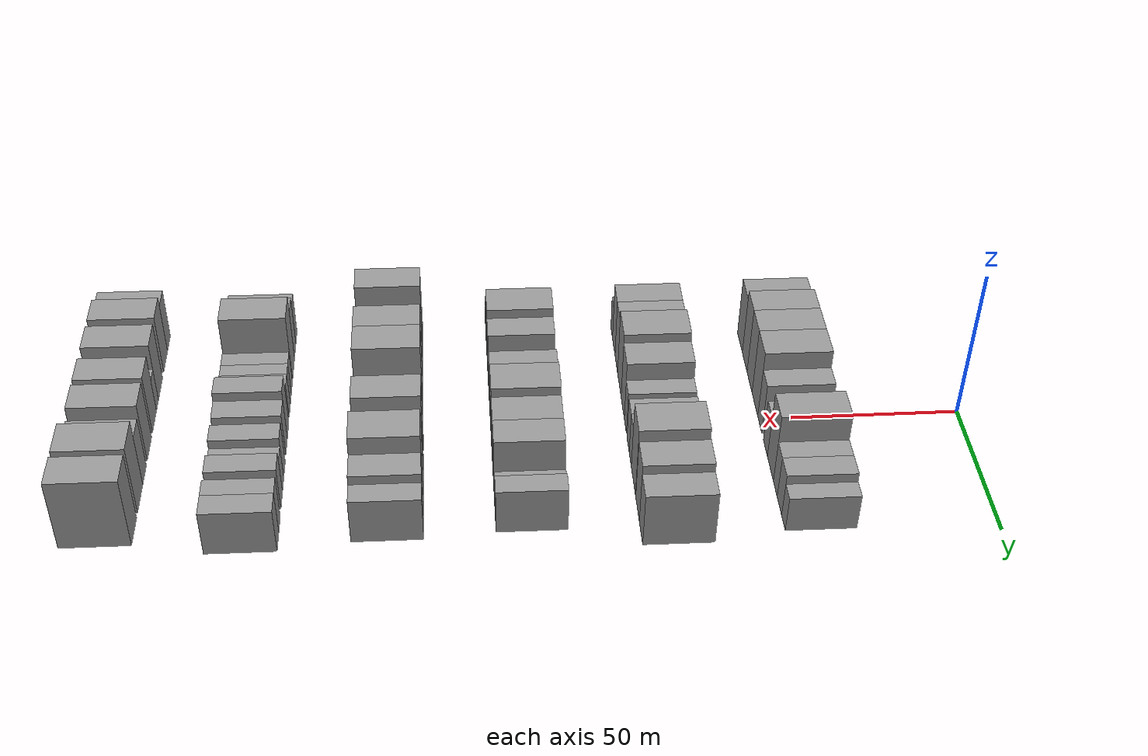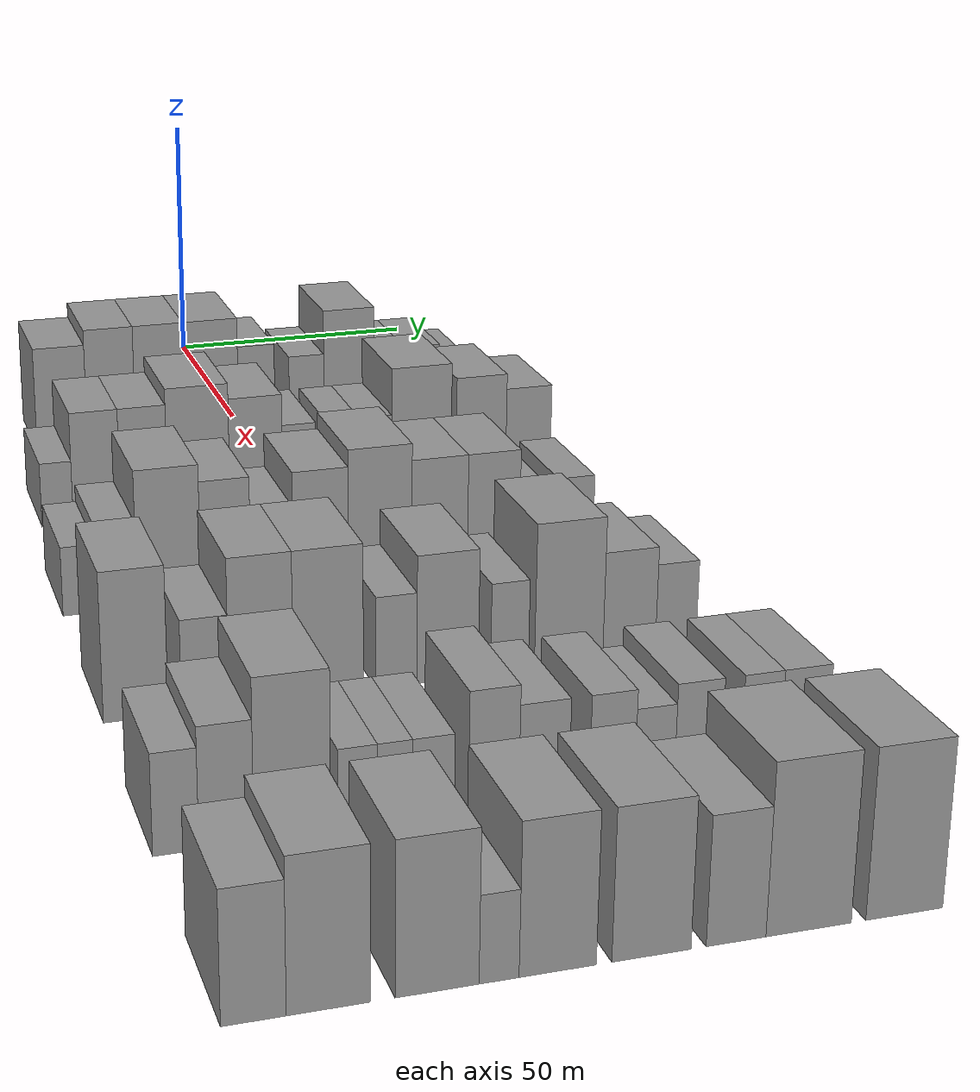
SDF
<sdf version="1.6">
 <world name="default">
  <model name="building_64">
   <static>1</static>
   <pose>50.0000 -36.5707 0 0.000000 0.000000 0.000000</pose>
   <link name="link">
    <pose>0 0 10.50 0 0 0</pose>
    <collision name="collision"><geometry><box><size>20.0000 9.9831 21.0000</size></box></geometry></collision>
    <visual name="visual">
     <cast_shadows>0</cast_shadows>
     <geometry><box><size>20.0000 9.9831 21.0000</size></box></geometry>
     <material>
      <script>
       <uri>model://grey_wall/materials/scripts</uri>
       <uri>model://grey_wall/materials/textures</uri>
       <name>vrc/grey_wall</name>
      </script>
     </material>
    </visual>
   </link>
  </model>
  <model name="building_65">
   <static>1</static>
   <pose>50.0000 -26.7552 0 0.000000 0.000000 0.000000</pose>
   <link name="link">
    <pose>0 0 12.00 0 0 0</pose>
    <collision name="collision"><geometry><box><size>20.0000 9.6478 24.0000</size></box></geometry></collision>
    <visual name="visual">
     <cast_shadows>0</cast_shadows>
     <geometry><box><size>20.0000 9.6478 24.0000</size></box></geometry>
     <material>
      <script>
       <uri>model://grey_wall/materials/scripts</uri>
       <uri>model://grey_wall/materials/textures</uri>
       <name>vrc/grey_wall</name>
      </script>
     </material>
    </visual>
   </link>
  </model>
  <model name="building_66">
   <static>1</static>
   <pose>50.0000 -16.9286 0 0.000000 0.000000 0.000000</pose>
   <link name="link">
    <pose>0 0 12.00 0 0 0</pose>
    <collision name="collision"><geometry><box><size>20.0000 10.0054 24.0000</size></box></geometry></collision>
    <visual name="visual">
     <cast_shadows>0</cast_shadows>
     <geometry><box><size>20.0000 10.0054 24.0000</size></box></geometry>
     <material>
      <script>
       <uri>model://grey_wall/materials/scripts</uri>
       <uri>model://grey_wall/materials/textures</uri>
       <name>vrc/grey_wall</name>
      </script>
     </material>
    </visual>
   </link>
  </model>
  <model name="building_67">
   <static>1</static>
   <pose>50.0000 -6.4677 0 0.000000 0.000000 0.000000</pose>
   <link name="link">
    <pose>0 0 12.00 0 0 0</pose>
    <collision name="collision"><geometry><box><size>20.0000 10.9163 24.0000</size></box></geometry></collision>
    <visual name="visual">
     <cast_shadows>0</cast_shadows>
     <geometry><box><size>20.0000 10.9163 24.0000</size></box></geometry>
     <material>
      <script>
       <uri>model://grey_wall/materials/scripts</uri>
       <uri>model://grey_wall/materials/textures</uri>
       <name>vrc/grey_wall</name>
      </script>
     </material>
    </visual>
   </link>
  </model>
  <model name="building_68">
   <static>1</static>
   <pose>50.0000 2.7453 0 0.000000 0.000000 0.000000</pose>
   <link name="link">
    <pose>0 0 9.00 0 0 0</pose>
    <collision name="collision"><geometry><box><size>20.0000 7.5098 18.0000</size></box></geometry></collision>
    <visual name="visual">
     <cast_shadows>0</cast_shadows>
     <geometry><box><size>20.0000 7.5098 18.0000</size></box></geometry>
     <material>
      <script>
       <uri>model://grey_wall/materials/scripts</uri>
       <uri>model://grey_wall/materials/textures</uri>
       <name>vrc/grey_wall</name>
      </script>
     </material>
    </visual>
   </link>
  </model>
  <model name="building_69">
   <static>1</static>
   <pose>50.0000 13.1117 0 0.000000 0.000000 0.000000</pose>
   <link name="link">
    <pose>0 0 7.50 0 0 0</pose>
    <collision name="collision"><geometry><box><size>20.0000 7.2229 15.0000</size></box></geometry></collision>
    <visual name="visual">
     <cast_shadows>0</cast_shadows>
     <geometry><box><size>20.0000 7.2229 15.0000</size></box></geometry>
     <material>
      <script>
       <uri>model://grey_wall/materials/scripts</uri>
       <uri>model://grey_wall/materials/textures</uri>
       <name>vrc/grey_wall</name>
      </script>
     </material>
    </visual>
   </link>
  </model>
  <model name="building_70">
   <static>1</static>
   <pose>50.0000 21.9807 0 0.000000 0.000000 0.000000</pose>
   <link name="link">
    <pose>0 0 12.00 0 0 0</pose>
    <collision name="collision"><geometry><box><size>20.0000 10.5153 24.0000</size></box></geometry></collision>
    <visual name="visual">
     <cast_shadows>0</cast_shadows>
     <geometry><box><size>20.0000 10.5153 24.0000</size></box></geometry>
     <material>
      <script>
       <uri>model://grey_wall/materials/scripts</uri>
       <uri>model://grey_wall/materials/textures</uri>
       <name>vrc/grey_wall</name>
      </script>
     </material>
    </visual>
   </link>
  </model>
  <model name="building_71">
   <static>1</static>
   <pose>50.0000 30.4927 0 0.000000 0.000000 0.000000</pose>
   <link name="link">
    <pose>0 0 7.50 0 0 0</pose>
    <collision name="collision"><geometry><box><size>20.0000 6.5086 15.0000</size></box></geometry></collision>
    <visual name="visual">
     <cast_shadows>0</cast_shadows>
     <geometry><box><size>20.0000 6.5086 15.0000</size></box></geometry>
     <material>
      <script>
       <uri>model://grey_wall/materials/scripts</uri>
       <uri>model://grey_wall/materials/textures</uri>
       <name>vrc/grey_wall</name>
      </script>
     </material>
    </visual>
   </link>
  </model>
  <model name="building_72">
   <static>1</static>
   <pose>50.0000 37.4899 0 0.000000 0.000000 0.000000</pose>
   <link name="link">
    <pose>0 0 7.50 0 0 0</pose>
    <collision name="collision"><geometry><box><size>20.0000 7.4859 15.0000</size></box></geometry></collision>
    <visual name="visual">
     <cast_shadows>0</cast_shadows>
     <geometry><box><size>20.0000 7.4859 15.0000</size></box></geometry>
     <material>
      <script>
       <uri>model://grey_wall/materials/scripts</uri>
       <uri>model://grey_wall/materials/textures</uri>
       <name>vrc/grey_wall</name>
      </script>
     </material>
    </visual>
   </link>
  </model>
  <model name="building_73">
   <static>1</static>
   <pose>50.0000 44.1917 0 0.000000 0.000000 0.000000</pose>
   <link name="link">
    <pose>0 0 6.00 0 0 0</pose>
    <collision name="collision"><geometry><box><size>20.0000 5.9176 12.0000</size></box></geometry></collision>
    <visual name="visual">
     <cast_shadows>0</cast_shadows>
     <geometry><box><size>20.0000 5.9176 12.0000</size></box></geometry>
     <material>
      <script>
       <uri>model://grey_wall/materials/scripts</uri>
       <uri>model://grey_wall/materials/textures</uri>
       <name>vrc/grey_wall</name>
      </script>
     </material>
    </visual>
   </link>
  </model>
  <model name="building_193">
   <static>1</static>
   <pose>90.0000 -43.5372 0 0.000000 0.000000 0.000000</pose>
   <link name="link">
    <pose>0 0 6.00 0 0 0</pose>
    <collision name="collision"><geometry><box><size>20.0000 5.6573 12.0000</size></box></geometry></collision>
    <visual name="visual">
     <cast_shadows>0</cast_shadows>
     <geometry><box><size>20.0000 5.6573 12.0000</size></box></geometry>
     <material>
      <script>
       <uri>model://grey_wall/materials/scripts</uri>
       <uri>model://grey_wall/materials/textures</uri>
       <name>vrc/grey_wall</name>
      </script>
     </material>
    </visual>
   </link>
  </model>
  <model name="building_194">
   <static>1</static>
   <pose>90.0000 -36.3750 0 0.000000 0.000000 0.000000</pose>
   <link name="link">
    <pose>0 0 10.50 0 0 0</pose>
    <collision name="collision"><geometry><box><size>20.0000 8.6672 21.0000</size></box></geometry></collision>
    <visual name="visual">
     <cast_shadows>0</cast_shadows>
     <geometry><box><size>20.0000 8.6672 21.0000</size></box></geometry>
     <material>
      <script>
       <uri>model://grey_wall/materials/scripts</uri>
       <uri>model://grey_wall/materials/textures</uri>
       <name>vrc/grey_wall</name>
      </script>
     </material>
    </visual>
   </link>
  </model>
  <model name="building_195">
   <static>1</static>
   <pose>90.0000 -27.6956 0 0.000000 0.000000 0.000000</pose>
   <link name="link">
    <pose>0 0 10.50 0 0 0</pose>
    <collision name="collision"><geometry><box><size>20.0000 8.6914 21.0000</size></box></geometry></collision>
    <visual name="visual">
     <cast_shadows>0</cast_shadows>
     <geometry><box><size>20.0000 8.6914 21.0000</size></box></geometry>
     <material>
      <script>
       <uri>model://grey_wall/materials/scripts</uri>
       <uri>model://grey_wall/materials/textures</uri>
       <name>vrc/grey_wall</name>
      </script>
     </material>
    </visual>
   </link>
  </model>
  <model name="building_196">
   <static>1</static>
   <pose>90.0000 -17.5672 0 0.000000 0.000000 0.000000</pose>
   <link name="link">
    <pose>0 0 12.00 0 0 0</pose>
    <collision name="collision"><geometry><box><size>20.0000 11.5655 24.0000</size></box></geometry></collision>
    <visual name="visual">
     <cast_shadows>0</cast_shadows>
     <geometry><box><size>20.0000 11.5655 24.0000</size></box></geometry>
     <material>
      <script>
       <uri>model://grey_wall/materials/scripts</uri>
       <uri>model://grey_wall/materials/textures</uri>
       <name>vrc/grey_wall</name>
      </script>
     </material>
    </visual>
   </link>
  </model>
  <model name="building_197">
   <static>1</static>
   <pose>90.0000 -6.8051 0 0.000000 0.000000 0.000000</pose>
   <link name="link">
    <pose>0 0 10.50 0 0 0</pose>
    <collision name="collision"><geometry><box><size>20.0000 9.9586 21.0000</size></box></geometry></collision>
    <visual name="visual">
     <cast_shadows>0</cast_shadows>
     <geometry><box><size>20.0000 9.9586 21.0000</size></box></geometry>
     <material>
      <script>
       <uri>model://grey_wall/materials/scripts</uri>
       <uri>model://grey_wall/materials/textures</uri>
       <name>vrc/grey_wall</name>
      </script>
     </material>
    </visual>
   </link>
  </model>
  <model name="building_198">
   <static>1</static>
   <pose>90.0000 1.3695 0 0.000000 0.000000 0.000000</pose>
   <link name="link">
    <pose>0 0 7.50 0 0 0</pose>
    <collision name="collision"><geometry><box><size>20.0000 6.3907 15.0000</size></box></geometry></collision>
    <visual name="visual">
     <cast_shadows>0</cast_shadows>
     <geometry><box><size>20.0000 6.3907 15.0000</size></box></geometry>
     <material>
      <script>
       <uri>model://grey_wall/materials/scripts</uri>
       <uri>model://grey_wall/materials/textures</uri>
       <name>vrc/grey_wall</name>
      </script>
     </material>
    </visual>
   </link>
  </model>
  <model name="building_199">
   <static>1</static>
   <pose>90.0000 9.7603 0 0.000000 0.000000 0.000000</pose>
   <link name="link">
    <pose>0 0 7.50 0 0 0</pose>
    <collision name="collision"><geometry><box><size>20.0000 6.3908 15.0000</size></box></geometry></collision>
    <visual name="visual">
     <cast_shadows>0</cast_shadows>
     <geometry><box><size>20.0000 6.3908 15.0000</size></box></geometry>
     <material>
      <script>
       <uri>model://grey_wall/materials/scripts</uri>
       <uri>model://grey_wall/materials/textures</uri>
       <name>vrc/grey_wall</name>
      </script>
     </material>
    </visual>
   </link>
  </model>
  <model name="building_200">
   <static>1</static>
   <pose>90.0000 16.0520 0 0.000000 0.000000 0.000000</pose>
   <link name="link">
    <pose>0 0 7.50 0 0 0</pose>
    <collision name="collision"><geometry><box><size>20.0000 6.1927 15.0000</size></box></geometry></collision>
    <visual name="visual">
     <cast_shadows>0</cast_shadows>
     <geometry><box><size>20.0000 6.1927 15.0000</size></box></geometry>
     <material>
      <script>
       <uri>model://grey_wall/materials/scripts</uri>
       <uri>model://grey_wall/materials/textures</uri>
       <name>vrc/grey_wall</name>
      </script>
     </material>
    </visual>
   </link>
  </model>
  <model name="building_201">
   <static>1</static>
   <pose>90.0000 24.9885 0 0.000000 0.000000 0.000000</pose>
   <link name="link">
    <pose>0 0 12.00 0 0 0</pose>
    <collision name="collision"><geometry><box><size>20.0000 11.6802 24.0000</size></box></geometry></collision>
    <visual name="visual">
     <cast_shadows>0</cast_shadows>
     <geometry><box><size>20.0000 11.6802 24.0000</size></box></geometry>
     <material>
      <script>
       <uri>model://grey_wall/materials/scripts</uri>
       <uri>model://grey_wall/materials/textures</uri>
       <name>vrc/grey_wall</name>
      </script>
     </material>
    </visual>
   </link>
  </model>
  <model name="building_202">
   <static>1</static>
   <pose>90.0000 36.7633 0 0.000000 0.000000 0.000000</pose>
   <link name="link">
    <pose>0 0 10.50 0 0 0</pose>
    <collision name="collision"><geometry><box><size>20.0000 9.8695 21.0000</size></box></geometry></collision>
    <visual name="visual">
     <cast_shadows>0</cast_shadows>
     <geometry><box><size>20.0000 9.8695 21.0000</size></box></geometry>
     <material>
      <script>
       <uri>model://grey_wall/materials/scripts</uri>
       <uri>model://grey_wall/materials/textures</uri>
       <name>vrc/grey_wall</name>
      </script>
     </material>
    </visual>
   </link>
  </model>
  <model name="building_203">
   <static>1</static>
   <pose>90.0000 46.1852 0 0.000000 0.000000 0.000000</pose>
   <link name="link">
    <pose>0 0 9.00 0 0 0</pose>
    <collision name="collision"><geometry><box><size>20.0000 8.9742 18.0000</size></box></geometry></collision>
    <visual name="visual">
     <cast_shadows>0</cast_shadows>
     <geometry><box><size>20.0000 8.9742 18.0000</size></box></geometry>
     <material>
      <script>
       <uri>model://grey_wall/materials/scripts</uri>
       <uri>model://grey_wall/materials/textures</uri>
       <name>vrc/grey_wall</name>
      </script>
     </material>
    </visual>
   </link>
  </model>
  <model name="building_333">
   <static>1</static>
   <pose>130.0000 -45.8507 0 0.000000 0.000000 0.000000</pose>
   <link name="link">
    <pose>0 0 6.00 0 0 0</pose>
    <collision name="collision"><geometry><box><size>20.0000 5.6868 12.0000</size></box></geometry></collision>
    <visual name="visual">
     <cast_shadows>0</cast_shadows>
     <geometry><box><size>20.0000 5.6868 12.0000</size></box></geometry>
     <material>
      <script>
       <uri>model://grey_wall/materials/scripts</uri>
       <uri>model://grey_wall/materials/textures</uri>
       <name>vrc/grey_wall</name>
      </script>
     </material>
    </visual>
   </link>
  </model>
  <model name="building_334">
   <static>1</static>
   <pose>130.0000 -39.6949 0 0.000000 0.000000 0.000000</pose>
   <link name="link">
    <pose>0 0 7.50 0 0 0</pose>
    <collision name="collision"><geometry><box><size>20.0000 6.6247 15.0000</size></box></geometry></collision>
    <visual name="visual">
     <cast_shadows>0</cast_shadows>
     <geometry><box><size>20.0000 6.6247 15.0000</size></box></geometry>
     <material>
      <script>
       <uri>model://grey_wall/materials/scripts</uri>
       <uri>model://grey_wall/materials/textures</uri>
       <name>vrc/grey_wall</name>
      </script>
     </material>
    </visual>
   </link>
  </model>
  <model name="building_335">
   <static>1</static>
   <pose>130.0000 -31.0289 0 0.000000 0.000000 0.000000</pose>
   <link name="link">
    <pose>0 0 12.00 0 0 0</pose>
    <collision name="collision"><geometry><box><size>20.0000 10.7073 24.0000</size></box></geometry></collision>
    <visual name="visual">
     <cast_shadows>0</cast_shadows>
     <geometry><box><size>20.0000 10.7073 24.0000</size></box></geometry>
     <material>
      <script>
       <uri>model://grey_wall/materials/scripts</uri>
       <uri>model://grey_wall/materials/textures</uri>
       <name>vrc/grey_wall</name>
      </script>
     </material>
    </visual>
   </link>
  </model>
  <model name="building_336">
   <static>1</static>
   <pose>130.0000 -21.4346 0 0.000000 0.000000 0.000000</pose>
   <link name="link">
    <pose>0 0 10.50 0 0 0</pose>
    <collision name="collision"><geometry><box><size>20.0000 8.4813 21.0000</size></box></geometry></collision>
    <visual name="visual">
     <cast_shadows>0</cast_shadows>
     <geometry><box><size>20.0000 8.4813 21.0000</size></box></geometry>
     <material>
      <script>
       <uri>model://grey_wall/materials/scripts</uri>
       <uri>model://grey_wall/materials/textures</uri>
       <name>vrc/grey_wall</name>
      </script>
     </material>
    </visual>
   </link>
  </model>
  <model name="building_337">
   <static>1</static>
   <pose>130.0000 -13.5529 0 0.000000 0.000000 0.000000</pose>
   <link name="link">
    <pose>0 0 7.50 0 0 0</pose>
    <collision name="collision"><geometry><box><size>20.0000 7.2821 15.0000</size></box></geometry></collision>
    <visual name="visual">
     <cast_shadows>0</cast_shadows>
     <geometry><box><size>20.0000 7.2821 15.0000</size></box></geometry>
     <material>
      <script>
       <uri>model://grey_wall/materials/scripts</uri>
       <uri>model://grey_wall/materials/textures</uri>
       <name>vrc/grey_wall</name>
      </script>
     </material>
    </visual>
   </link>
  </model>
  <model name="building_338">
   <static>1</static>
   <pose>130.0000 -5.1177 0 0.000000 0.000000 0.000000</pose>
   <link name="link">
    <pose>0 0 10.50 0 0 0</pose>
    <collision name="collision"><geometry><box><size>20.0000 9.5883 21.0000</size></box></geometry></collision>
    <visual name="visual">
     <cast_shadows>0</cast_shadows>
     <geometry><box><size>20.0000 9.5883 21.0000</size></box></geometry>
     <material>
      <script>
       <uri>model://grey_wall/materials/scripts</uri>
       <uri>model://grey_wall/materials/textures</uri>
       <name>vrc/grey_wall</name>
      </script>
     </material>
    </visual>
   </link>
  </model>
  <model name="building_339">
   <static>1</static>
   <pose>130.0000 5.2632 0 0.000000 0.000000 0.000000</pose>
   <link name="link">
    <pose>0 0 12.00 0 0 0</pose>
    <collision name="collision"><geometry><box><size>20.0000 11.1736 24.0000</size></box></geometry></collision>
    <visual name="visual">
     <cast_shadows>0</cast_shadows>
     <geometry><box><size>20.0000 11.1736 24.0000</size></box></geometry>
     <material>
      <script>
       <uri>model://grey_wall/materials/scripts</uri>
       <uri>model://grey_wall/materials/textures</uri>
       <name>vrc/grey_wall</name>
      </script>
     </material>
    </visual>
   </link>
  </model>
  <model name="building_340">
   <static>1</static>
   <pose>130.0000 15.8299 0 0.000000 0.000000 0.000000</pose>
   <link name="link">
    <pose>0 0 10.50 0 0 0</pose>
    <collision name="collision"><geometry><box><size>20.0000 9.9596 21.0000</size></box></geometry></collision>
    <visual name="visual">
     <cast_shadows>0</cast_shadows>
     <geometry><box><size>20.0000 9.9596 21.0000</size></box></geometry>
     <material>
      <script>
       <uri>model://grey_wall/materials/scripts</uri>
       <uri>model://grey_wall/materials/textures</uri>
       <name>vrc/grey_wall</name>
      </script>
     </material>
    </visual>
   </link>
  </model>
  <model name="building_341">
   <static>1</static>
   <pose>130.0000 25.5092 0 0.000000 0.000000 0.000000</pose>
   <link name="link">
    <pose>0 0 10.50 0 0 0</pose>
    <collision name="collision"><geometry><box><size>20.0000 9.3991 21.0000</size></box></geometry></collision>
    <visual name="visual">
     <cast_shadows>0</cast_shadows>
     <geometry><box><size>20.0000 9.3991 21.0000</size></box></geometry>
     <material>
      <script>
       <uri>model://grey_wall/materials/scripts</uri>
       <uri>model://grey_wall/materials/textures</uri>
       <name>vrc/grey_wall</name>
      </script>
     </material>
    </visual>
   </link>
  </model>
  <model name="building_342">
   <static>1</static>
   <pose>130.0000 34.6546 0 0.000000 0.000000 0.000000</pose>
   <link name="link">
    <pose>0 0 6.00 0 0 0</pose>
    <collision name="collision"><geometry><box><size>20.0000 4.8918 12.0000</size></box></geometry></collision>
    <visual name="visual">
     <cast_shadows>0</cast_shadows>
     <geometry><box><size>20.0000 4.8918 12.0000</size></box></geometry>
     <material>
      <script>
       <uri>model://grey_wall/materials/scripts</uri>
       <uri>model://grey_wall/materials/textures</uri>
       <name>vrc/grey_wall</name>
      </script>
     </material>
    </visual>
   </link>
  </model>
  <model name="building_343">
   <static>1</static>
   <pose>130.0000 40.4305 0 0.000000 0.000000 0.000000</pose>
   <link name="link">
    <pose>0 0 7.50 0 0 0</pose>
    <collision name="collision"><geometry><box><size>20.0000 6.6600 15.0000</size></box></geometry></collision>
    <visual name="visual">
     <cast_shadows>0</cast_shadows>
     <geometry><box><size>20.0000 6.6600 15.0000</size></box></geometry>
     <material>
      <script>
       <uri>model://grey_wall/materials/scripts</uri>
       <uri>model://grey_wall/materials/textures</uri>
       <name>vrc/grey_wall</name>
      </script>
     </material>
    </visual>
   </link>
  </model>
  <model name="building_471">
   <static>1</static>
   <pose>170.0000 -43.9746 0 0.000000 0.000000 0.000000</pose>
   <link name="link">
    <pose>0 0 12.00 0 0 0</pose>
    <collision name="collision"><geometry><box><size>20.0000 9.7342 24.0000</size></box></geometry></collision>
    <visual name="visual">
     <cast_shadows>0</cast_shadows>
     <geometry><box><size>20.0000 9.7342 24.0000</size></box></geometry>
     <material>
      <script>
       <uri>model://grey_wall/materials/scripts</uri>
       <uri>model://grey_wall/materials/textures</uri>
       <name>vrc/grey_wall</name>
      </script>
     </material>
    </visual>
   </link>
  </model>
  <model name="building_472">
   <static>1</static>
   <pose>170.0000 -33.5180 0 0.000000 0.000000 0.000000</pose>
   <link name="link">
    <pose>0 0 7.50 0 0 0</pose>
    <collision name="collision"><geometry><box><size>20.0000 7.1789 15.0000</size></box></geometry></collision>
    <visual name="visual">
     <cast_shadows>0</cast_shadows>
     <geometry><box><size>20.0000 7.1789 15.0000</size></box></geometry>
     <material>
      <script>
       <uri>model://grey_wall/materials/scripts</uri>
       <uri>model://grey_wall/materials/textures</uri>
       <name>vrc/grey_wall</name>
      </script>
     </material>
    </visual>
   </link>
  </model>
  <model name="building_473">
   <static>1</static>
   <pose>170.0000 -24.9867 0 0.000000 0.000000 0.000000</pose>
   <link name="link">
    <pose>0 0 12.00 0 0 0</pose>
    <collision name="collision"><geometry><box><size>20.0000 9.8836 24.0000</size></box></geometry></collision>
    <visual name="visual">
     <cast_shadows>0</cast_shadows>
     <geometry><box><size>20.0000 9.8836 24.0000</size></box></geometry>
     <material>
      <script>
       <uri>model://grey_wall/materials/scripts</uri>
       <uri>model://grey_wall/materials/textures</uri>
       <name>vrc/grey_wall</name>
      </script>
     </material>
    </visual>
   </link>
  </model>
  <model name="building_474">
   <static>1</static>
   <pose>170.0000 -14.5535 0 0.000000 0.000000 0.000000</pose>
   <link name="link">
    <pose>0 0 12.00 0 0 0</pose>
    <collision name="collision"><geometry><box><size>20.0000 10.9827 24.0000</size></box></geometry></collision>
    <visual name="visual">
     <cast_shadows>0</cast_shadows>
     <geometry><box><size>20.0000 10.9827 24.0000</size></box></geometry>
     <material>
      <script>
       <uri>model://grey_wall/materials/scripts</uri>
       <uri>model://grey_wall/materials/textures</uri>
       <name>vrc/grey_wall</name>
      </script>
     </material>
    </visual>
   </link>
  </model>
  <model name="building_475">
   <static>1</static>
   <pose>170.0000 -3.8141 0 0.000000 0.000000 0.000000</pose>
   <link name="link">
    <pose>0 0 7.50 0 0 0</pose>
    <collision name="collision"><geometry><box><size>20.0000 6.4961 15.0000</size></box></geometry></collision>
    <visual name="visual">
     <cast_shadows>0</cast_shadows>
     <geometry><box><size>20.0000 6.4961 15.0000</size></box></geometry>
     <material>
      <script>
       <uri>model://grey_wall/materials/scripts</uri>
       <uri>model://grey_wall/materials/textures</uri>
       <name>vrc/grey_wall</name>
      </script>
     </material>
    </visual>
   </link>
  </model>
  <model name="building_476">
   <static>1</static>
   <pose>170.0000 4.3822 0 0.000000 0.000000 0.000000</pose>
   <link name="link">
    <pose>0 0 10.50 0 0 0</pose>
    <collision name="collision"><geometry><box><size>20.0000 9.8967 21.0000</size></box></geometry></collision>
    <visual name="visual">
     <cast_shadows>0</cast_shadows>
     <geometry><box><size>20.0000 9.8967 21.0000</size></box></geometry>
     <material>
      <script>
       <uri>model://grey_wall/materials/scripts</uri>
       <uri>model://grey_wall/materials/textures</uri>
       <name>vrc/grey_wall</name>
      </script>
     </material>
    </visual>
   </link>
  </model>
  <model name="building_477">
   <static>1</static>
   <pose>170.0000 14.4190 0 0.000000 0.000000 0.000000</pose>
   <link name="link">
    <pose>0 0 7.50 0 0 0</pose>
    <collision name="collision"><geometry><box><size>20.0000 6.1769 15.0000</size></box></geometry></collision>
    <visual name="visual">
     <cast_shadows>0</cast_shadows>
     <geometry><box><size>20.0000 6.1769 15.0000</size></box></geometry>
     <material>
      <script>
       <uri>model://grey_wall/materials/scripts</uri>
       <uri>model://grey_wall/materials/textures</uri>
       <name>vrc/grey_wall</name>
      </script>
     </material>
    </visual>
   </link>
  </model>
  <model name="building_478">
   <static>1</static>
   <pose>170.0000 24.1749 0 0.000000 0.000000 0.000000</pose>
   <link name="link">
    <pose>0 0 12.00 0 0 0</pose>
    <collision name="collision"><geometry><box><size>20.0000 11.3350 24.0000</size></box></geometry></collision>
    <visual name="visual">
     <cast_shadows>0</cast_shadows>
     <geometry><box><size>20.0000 11.3350 24.0000</size></box></geometry>
     <material>
      <script>
       <uri>model://grey_wall/materials/scripts</uri>
       <uri>model://grey_wall/materials/textures</uri>
       <name>vrc/grey_wall</name>
      </script>
     </material>
    </visual>
   </link>
  </model>
  <model name="building_479">
   <static>1</static>
   <pose>170.0000 34.2581 0 0.000000 0.000000 0.000000</pose>
   <link name="link">
    <pose>0 0 9.00 0 0 0</pose>
    <collision name="collision"><geometry><box><size>20.0000 8.8314 18.0000</size></box></geometry></collision>
    <visual name="visual">
     <cast_shadows>0</cast_shadows>
     <geometry><box><size>20.0000 8.8314 18.0000</size></box></geometry>
     <material>
      <script>
       <uri>model://grey_wall/materials/scripts</uri>
       <uri>model://grey_wall/materials/textures</uri>
       <name>vrc/grey_wall</name>
      </script>
     </material>
    </visual>
   </link>
  </model>
  <model name="building_480">
   <static>1</static>
   <pose>170.0000 42.1265 0 0.000000 0.000000 0.000000</pose>
   <link name="link">
    <pose>0 0 7.50 0 0 0</pose>
    <collision name="collision"><geometry><box><size>20.0000 6.9055 15.0000</size></box></geometry></collision>
    <visual name="visual">
     <cast_shadows>0</cast_shadows>
     <geometry><box><size>20.0000 6.9055 15.0000</size></box></geometry>
     <material>
      <script>
       <uri>model://grey_wall/materials/scripts</uri>
       <uri>model://grey_wall/materials/textures</uri>
       <name>vrc/grey_wall</name>
      </script>
     </material>
    </visual>
   </link>
  </model>
  <model name="building_610">
   <static>1</static>
   <pose>210.0000 -46.0304 0 0.000000 0.000000 0.000000</pose>
   <link name="link">
    <pose>0 0 7.50 0 0 0</pose>
    <collision name="collision"><geometry><box><size>20.0000 6.1905 15.0000</size></box></geometry></collision>
    <visual name="visual">
     <cast_shadows>0</cast_shadows>
     <geometry><box><size>20.0000 6.1905 15.0000</size></box></geometry>
     <material>
      <script>
       <uri>model://grey_wall/materials/scripts</uri>
       <uri>model://grey_wall/materials/textures</uri>
       <name>vrc/grey_wall</name>
      </script>
     </material>
    </visual>
   </link>
  </model>
  <model name="building_611">
   <static>1</static>
   <pose>210.0000 -39.2137 0 0.000000 0.000000 0.000000</pose>
   <link name="link">
    <pose>0 0 9.00 0 0 0</pose>
    <collision name="collision"><geometry><box><size>20.0000 7.4429 18.0000</size></box></geometry></collision>
    <visual name="visual">
     <cast_shadows>0</cast_shadows>
     <geometry><box><size>20.0000 7.4429 18.0000</size></box></geometry>
     <material>
      <script>
       <uri>model://grey_wall/materials/scripts</uri>
       <uri>model://grey_wall/materials/textures</uri>
       <name>vrc/grey_wall</name>
      </script>
     </material>
    </visual>
   </link>
  </model>
  <model name="building_612">
   <static>1</static>
   <pose>210.0000 -30.2279 0 0.000000 0.000000 0.000000</pose>
   <link name="link">
    <pose>0 0 12.00 0 0 0</pose>
    <collision name="collision"><geometry><box><size>20.0000 10.5288 24.0000</size></box></geometry></collision>
    <visual name="visual">
     <cast_shadows>0</cast_shadows>
     <geometry><box><size>20.0000 10.5288 24.0000</size></box></geometry>
     <material>
      <script>
       <uri>model://grey_wall/materials/scripts</uri>
       <uri>model://grey_wall/materials/textures</uri>
       <name>vrc/grey_wall</name>
      </script>
     </material>
    </visual>
   </link>
  </model>
  <model name="building_613">
   <static>1</static>
   <pose>210.0000 -21.1947 0 0.000000 0.000000 0.000000</pose>
   <link name="link">
    <pose>0 0 6.00 0 0 0</pose>
    <collision name="collision"><geometry><box><size>20.0000 5.5374 12.0000</size></box></geometry></collision>
    <visual name="visual">
     <cast_shadows>0</cast_shadows>
     <geometry><box><size>20.0000 5.5374 12.0000</size></box></geometry>
     <material>
      <script>
       <uri>model://grey_wall/materials/scripts</uri>
       <uri>model://grey_wall/materials/textures</uri>
       <name>vrc/grey_wall</name>
      </script>
     </material>
    </visual>
   </link>
  </model>
  <model name="building_614">
   <static>1</static>
   <pose>210.0000 -15.9629 0 0.000000 0.000000 0.000000</pose>
   <link name="link">
    <pose>0 0 6.00 0 0 0</pose>
    <collision name="collision"><geometry><box><size>20.0000 4.9262 12.0000</size></box></geometry></collision>
    <visual name="visual">
     <cast_shadows>0</cast_shadows>
     <geometry><box><size>20.0000 4.9262 12.0000</size></box></geometry>
     <material>
      <script>
       <uri>model://grey_wall/materials/scripts</uri>
       <uri>model://grey_wall/materials/textures</uri>
       <name>vrc/grey_wall</name>
      </script>
     </material>
    </visual>
   </link>
  </model>
  <model name="building_615">
   <static>1</static>
   <pose>210.0000 -10.5226 0 0.000000 0.000000 0.000000</pose>
   <link name="link">
    <pose>0 0 6.00 0 0 0</pose>
    <collision name="collision"><geometry><box><size>20.0000 5.9545 12.0000</size></box></geometry></collision>
    <visual name="visual">
     <cast_shadows>0</cast_shadows>
     <geometry><box><size>20.0000 5.9545 12.0000</size></box></geometry>
     <material>
      <script>
       <uri>model://grey_wall/materials/scripts</uri>
       <uri>model://grey_wall/materials/textures</uri>
       <name>vrc/grey_wall</name>
      </script>
     </material>
    </visual>
   </link>
  </model>
  <model name="building_616">
   <static>1</static>
   <pose>210.0000 -1.9221 0 0.000000 0.000000 0.000000</pose>
   <link name="link">
    <pose>0 0 9.00 0 0 0</pose>
    <collision name="collision"><geometry><box><size>20.0000 7.2465 18.0000</size></box></geometry></collision>
    <visual name="visual">
     <cast_shadows>0</cast_shadows>
     <geometry><box><size>20.0000 7.2465 18.0000</size></box></geometry>
     <material>
      <script>
       <uri>model://grey_wall/materials/scripts</uri>
       <uri>model://grey_wall/materials/textures</uri>
       <name>vrc/grey_wall</name>
      </script>
     </material>
    </visual>
   </link>
  </model>
  <model name="building_617">
   <static>1</static>
   <pose>210.0000 5.3648 0 0.000000 0.000000 0.000000</pose>
   <link name="link">
    <pose>0 0 7.50 0 0 0</pose>
    <collision name="collision"><geometry><box><size>20.0000 7.3272 15.0000</size></box></geometry></collision>
    <visual name="visual">
     <cast_shadows>0</cast_shadows>
     <geometry><box><size>20.0000 7.3272 15.0000</size></box></geometry>
     <material>
      <script>
       <uri>model://grey_wall/materials/scripts</uri>
       <uri>model://grey_wall/materials/textures</uri>
       <name>vrc/grey_wall</name>
      </script>
     </material>
    </visual>
   </link>
  </model>
  <model name="building_618">
   <static>1</static>
   <pose>210.0000 15.3963 0 0.000000 0.000000 0.000000</pose>
   <link name="link">
    <pose>0 0 7.50 0 0 0</pose>
    <collision name="collision"><geometry><box><size>20.0000 6.7359 15.0000</size></box></geometry></collision>
    <visual name="visual">
     <cast_shadows>0</cast_shadows>
     <geometry><box><size>20.0000 6.7359 15.0000</size></box></geometry>
     <material>
      <script>
       <uri>model://grey_wall/materials/scripts</uri>
       <uri>model://grey_wall/materials/textures</uri>
       <name>vrc/grey_wall</name>
      </script>
     </material>
    </visual>
   </link>
  </model>
  <model name="building_619">
   <static>1</static>
   <pose>210.0000 21.7396 0 0.000000 0.000000 0.000000</pose>
   <link name="link">
    <pose>0 0 6.00 0 0 0</pose>
    <collision name="collision"><geometry><box><size>20.0000 5.9507 12.0000</size></box></geometry></collision>
    <visual name="visual">
     <cast_shadows>0</cast_shadows>
     <geometry><box><size>20.0000 5.9507 12.0000</size></box></geometry>
     <material>
      <script>
       <uri>model://grey_wall/materials/scripts</uri>
       <uri>model://grey_wall/materials/textures</uri>
       <name>vrc/grey_wall</name>
      </script>
     </material>
    </visual>
   </link>
  </model>
  <model name="building_620">
   <static>1</static>
   <pose>210.0000 28.2381 0 0.000000 0.000000 0.000000</pose>
   <link name="link">
    <pose>0 0 7.50 0 0 0</pose>
    <collision name="collision"><geometry><box><size>20.0000 7.0462 15.0000</size></box></geometry></collision>
    <visual name="visual">
     <cast_shadows>0</cast_shadows>
     <geometry><box><size>20.0000 7.0462 15.0000</size></box></geometry>
     <material>
      <script>
       <uri>model://grey_wall/materials/scripts</uri>
       <uri>model://grey_wall/materials/textures</uri>
       <name>vrc/grey_wall</name>
      </script>
     </material>
    </visual>
   </link>
  </model>
  <model name="building_621">
   <static>1</static>
   <pose>210.0000 37.8170 0 0.000000 0.000000 0.000000</pose>
   <link name="link">
    <pose>0 0 7.50 0 0 0</pose>
    <collision name="collision"><geometry><box><size>20.0000 6.1117 15.0000</size></box></geometry></collision>
    <visual name="visual">
     <cast_shadows>0</cast_shadows>
     <geometry><box><size>20.0000 6.1117 15.0000</size></box></geometry>
     <material>
      <script>
       <uri>model://grey_wall/materials/scripts</uri>
       <uri>model://grey_wall/materials/textures</uri>
       <name>vrc/grey_wall</name>
      </script>
     </material>
    </visual>
   </link>
  </model>
  <model name="building_622">
   <static>1</static>
   <pose>210.0000 44.5418 0 0.000000 0.000000 0.000000</pose>
   <link name="link">
    <pose>0 0 7.50 0 0 0</pose>
    <collision name="collision"><geometry><box><size>20.0000 7.3379 15.0000</size></box></geometry></collision>
    <visual name="visual">
     <cast_shadows>0</cast_shadows>
     <geometry><box><size>20.0000 7.3379 15.0000</size></box></geometry>
     <material>
      <script>
       <uri>model://grey_wall/materials/scripts</uri>
       <uri>model://grey_wall/materials/textures</uri>
       <name>vrc/grey_wall</name>
      </script>
     </material>
    </visual>
   </link>
  </model>
  <model name="building_753">
   <static>1</static>
   <pose>250.0000 -44.9569 0 0.000000 0.000000 0.000000</pose>
   <link name="link">
    <pose>0 0 9.00 0 0 0</pose>
    <collision name="collision"><geometry><box><size>20.0000 7.8014 18.0000</size></box></geometry></collision>
    <visual name="visual">
     <cast_shadows>0</cast_shadows>
     <geometry><box><size>20.0000 7.8014 18.0000</size></box></geometry>
     <material>
      <script>
       <uri>model://grey_wall/materials/scripts</uri>
       <uri>model://grey_wall/materials/textures</uri>
       <name>vrc/grey_wall</name>
      </script>
     </material>
    </visual>
   </link>
  </model>
  <model name="building_754">
   <static>1</static>
   <pose>250.0000 -35.9703 0 0.000000 0.000000 0.000000</pose>
   <link name="link">
    <pose>0 0 10.50 0 0 0</pose>
    <collision name="collision"><geometry><box><size>20.0000 10.1718 21.0000</size></box></geometry></collision>
    <visual name="visual">
     <cast_shadows>0</cast_shadows>
     <geometry><box><size>20.0000 10.1718 21.0000</size></box></geometry>
     <material>
      <script>
       <uri>model://grey_wall/materials/scripts</uri>
       <uri>model://grey_wall/materials/textures</uri>
       <name>vrc/grey_wall</name>
      </script>
     </material>
    </visual>
   </link>
  </model>
  <model name="building_755">
   <static>1</static>
   <pose>250.0000 -22.6878 0 0.000000 0.000000 0.000000</pose>
   <link name="link">
    <pose>0 0 10.50 0 0 0</pose>
    <collision name="collision"><geometry><box><size>20.0000 10.3932 21.0000</size></box></geometry></collision>
    <visual name="visual">
     <cast_shadows>0</cast_shadows>
     <geometry><box><size>20.0000 10.3932 21.0000</size></box></geometry>
     <material>
      <script>
       <uri>model://grey_wall/materials/scripts</uri>
       <uri>model://grey_wall/materials/textures</uri>
       <name>vrc/grey_wall</name>
      </script>
     </material>
    </visual>
   </link>
  </model>
  <model name="building_756">
   <static>1</static>
   <pose>250.0000 -14.9782 0 0.000000 0.000000 0.000000</pose>
   <link name="link">
    <pose>0 0 6.00 0 0 0</pose>
    <collision name="collision"><geometry><box><size>20.0000 5.0259 12.0000</size></box></geometry></collision>
    <visual name="visual">
     <cast_shadows>0</cast_shadows>
     <geometry><box><size>20.0000 5.0259 12.0000</size></box></geometry>
     <material>
      <script>
       <uri>model://grey_wall/materials/scripts</uri>
       <uri>model://grey_wall/materials/textures</uri>
       <name>vrc/grey_wall</name>
      </script>
     </material>
    </visual>
   </link>
  </model>
  <model name="building_757">
   <static>1</static>
   <pose>250.0000 -7.5364 0 0.000000 0.000000 0.000000</pose>
   <link name="link">
    <pose>0 0 10.50 0 0 0</pose>
    <collision name="collision"><geometry><box><size>20.0000 9.8577 21.0000</size></box></geometry></collision>
    <visual name="visual">
     <cast_shadows>0</cast_shadows>
     <geometry><box><size>20.0000 9.8577 21.0000</size></box></geometry>
     <material>
      <script>
       <uri>model://grey_wall/materials/scripts</uri>
       <uri>model://grey_wall/materials/textures</uri>
       <name>vrc/grey_wall</name>
      </script>
     </material>
    </visual>
   </link>
  </model>
  <model name="building_758">
   <static>1</static>
   <pose>250.0000 4.5619 0 0.000000 0.000000 0.000000</pose>
   <link name="link">
    <pose>0 0 10.50 0 0 0</pose>
    <collision name="collision"><geometry><box><size>20.0000 10.3389 21.0000</size></box></geometry></collision>
    <visual name="visual">
     <cast_shadows>0</cast_shadows>
     <geometry><box><size>20.0000 10.3389 21.0000</size></box></geometry>
     <material>
      <script>
       <uri>model://grey_wall/materials/scripts</uri>
       <uri>model://grey_wall/materials/textures</uri>
       <name>vrc/grey_wall</name>
      </script>
     </material>
    </visual>
   </link>
  </model>
  <model name="building_759">
   <static>1</static>
   <pose>250.0000 15.7177 0 0.000000 0.000000 0.000000</pose>
   <link name="link">
    <pose>0 0 9.00 0 0 0</pose>
    <collision name="collision"><geometry><box><size>20.0000 7.9727 18.0000</size></box></geometry></collision>
    <visual name="visual">
     <cast_shadows>0</cast_shadows>
     <geometry><box><size>20.0000 7.9727 18.0000</size></box></geometry>
     <material>
      <script>
       <uri>model://grey_wall/materials/scripts</uri>
       <uri>model://grey_wall/materials/textures</uri>
       <name>vrc/grey_wall</name>
      </script>
     </material>
    </visual>
   </link>
  </model>
  <model name="building_760">
   <static>1</static>
   <pose>250.0000 25.4986 0 0.000000 0.000000 0.000000</pose>
   <link name="link">
    <pose>0 0 12.00 0 0 0</pose>
    <collision name="collision"><geometry><box><size>20.0000 11.5893 24.0000</size></box></geometry></collision>
    <visual name="visual">
     <cast_shadows>0</cast_shadows>
     <geometry><box><size>20.0000 11.5893 24.0000</size></box></geometry>
     <material>
      <script>
       <uri>model://grey_wall/materials/scripts</uri>
       <uri>model://grey_wall/materials/textures</uri>
       <name>vrc/grey_wall</name>
      </script>
     </material>
    </visual>
   </link>
  </model>
  <model name="building_761">
   <static>1</static>
   <pose>250.0000 38.6426 0 0.000000 0.000000 0.000000</pose>
   <link name="link">
    <pose>0 0 12.00 0 0 0</pose>
    <collision name="collision"><geometry><box><size>20.0000 10.6985 24.0000</size></box></geometry></collision>
    <visual name="visual">
     <cast_shadows>0</cast_shadows>
     <geometry><box><size>20.0000 10.6985 24.0000</size></box></geometry>
     <material>
      <script>
       <uri>model://grey_wall/materials/scripts</uri>
       <uri>model://grey_wall/materials/textures</uri>
       <name>vrc/grey_wall</name>
      </script>
     </material>
    </visual>
   </link>
  </model>
 </world>
</sdf>
